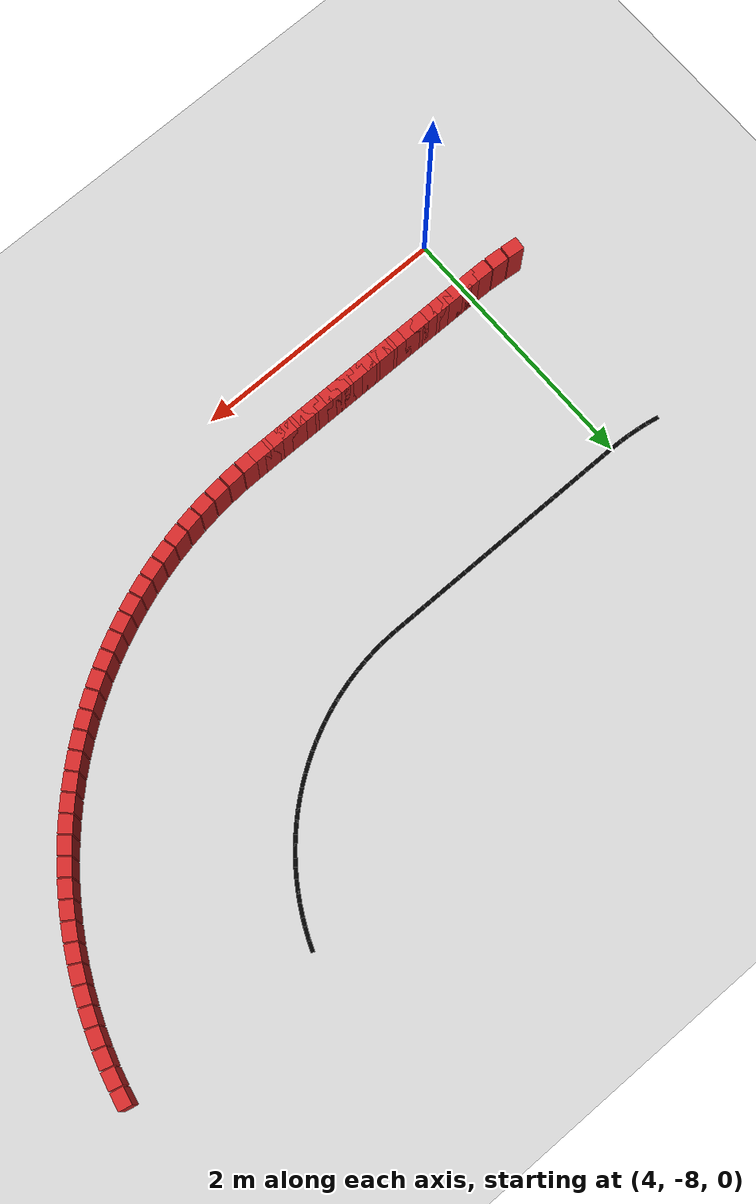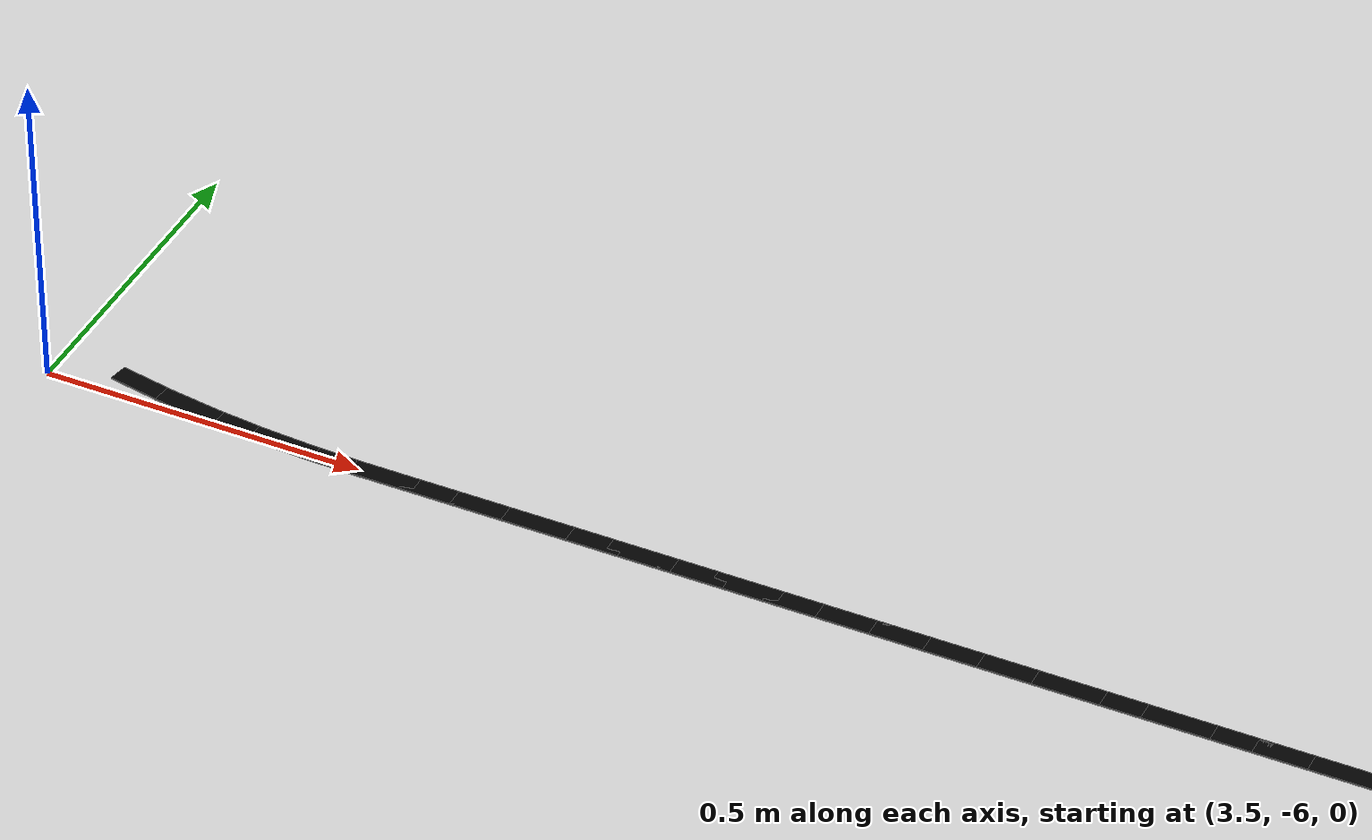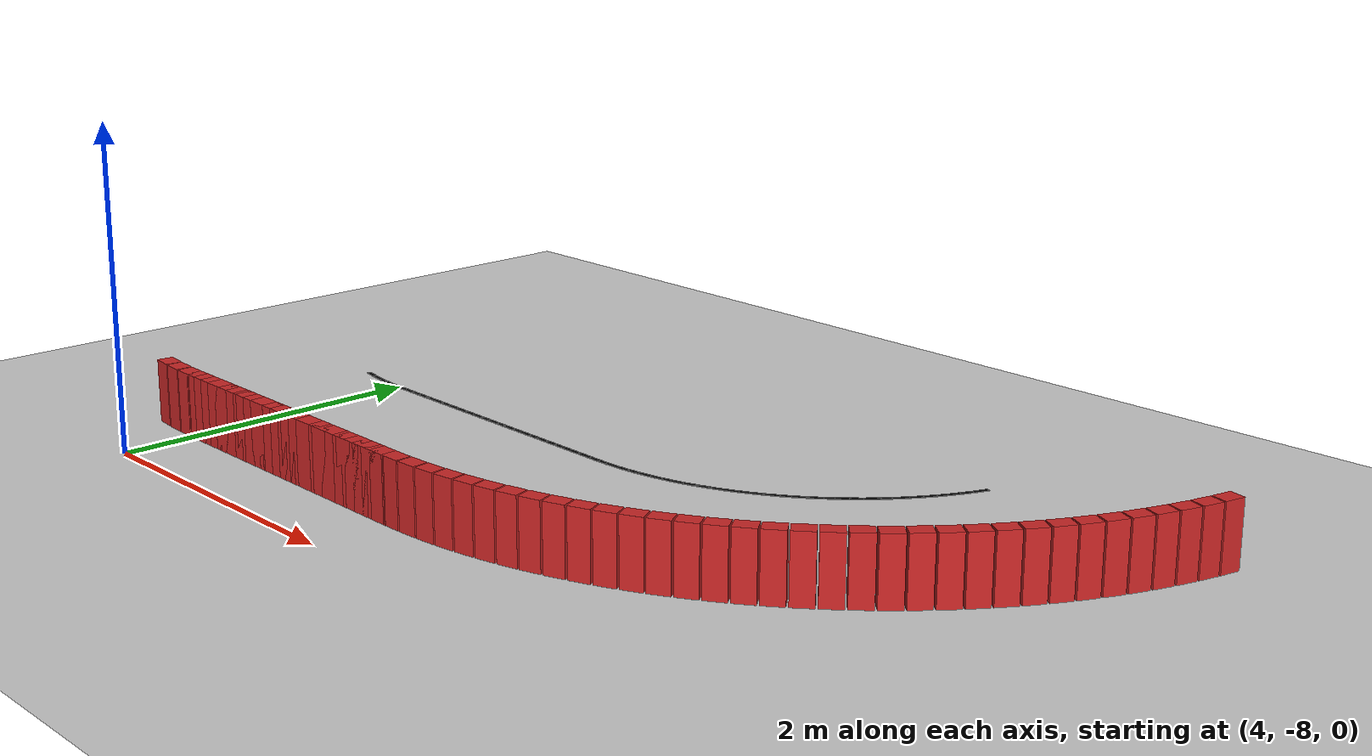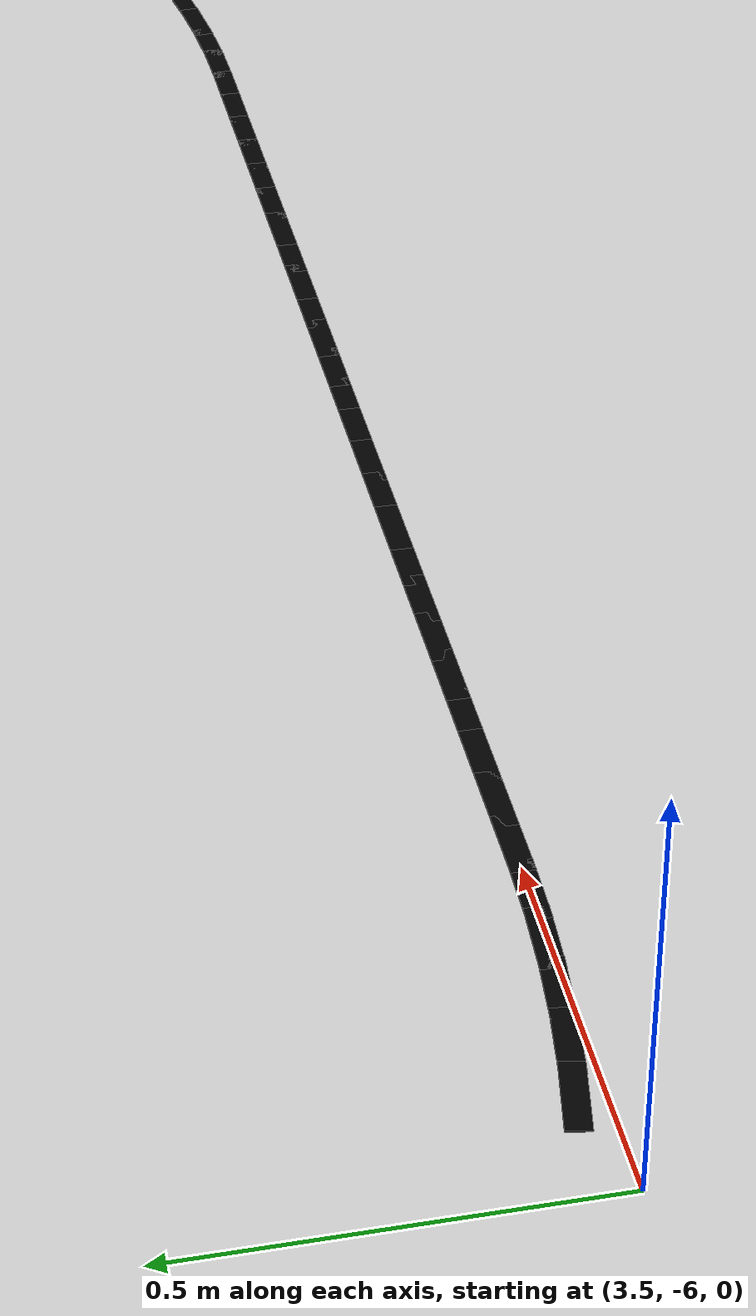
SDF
<sdf version="1.6">
 <world name="new_race_track">
  <include><uri>model://ground_plane</uri></include>
  <include><uri>model://sun</uri></include>
  <model name="ow_329">
   <static>true</static>
   <pose>3.6482 -7.4819 0.200 0 0 -0.1007</pose>
   <link name="l">
    <collision name="c"><geometry><box><size>0.1305 0.1 0.4</size></box></geometry></collision>
    <visual name="v">
     <geometry><box><size>0.1305 0.1 0.4</size></box></geometry>
     <material><ambient>0.8 0.15 0.15 1</ambient><diffuse>0.8 0.15 0.15 1</diffuse></material>
    </visual>
   </link>
  </model>
  <model name="ow_330">
   <static>true</static>
   <pose>3.7887 -7.4932 0.200 0 0 -0.0604</pose>
   <link name="l">
    <collision name="c"><geometry><box><size>0.1305 0.1 0.4</size></box></geometry></collision>
    <visual name="v">
     <geometry><box><size>0.1305 0.1 0.4</size></box></geometry>
     <material><ambient>0.8 0.15 0.15 1</ambient><diffuse>0.8 0.15 0.15 1</diffuse></material>
    </visual>
   </link>
  </model>
  <model name="ow_331">
   <static>true</static>
   <pose>3.9295 -7.4989 0.200 0 0 -0.0201</pose>
   <link name="l">
    <collision name="c"><geometry><box><size>0.1305 0.1 0.4</size></box></geometry></collision>
    <visual name="v">
     <geometry><box><size>0.1305 0.1 0.4</size></box></geometry>
     <material><ambient>0.8 0.15 0.15 1</ambient><diffuse>0.8 0.15 0.15 1</diffuse></material>
    </visual>
   </link>
  </model>
  <model name="ow_332">
   <static>true</static>
   <pose>4.0400 -7.5000 0.200 0 0 0.0000</pose>
   <link name="l">
    <collision name="c"><geometry><box><size>0.1300 0.1 0.4</size></box></geometry></collision>
    <visual name="v">
     <geometry><box><size>0.1300 0.1 0.4</size></box></geometry>
     <material><ambient>0.8 0.15 0.15 1</ambient><diffuse>0.8 0.15 0.15 1</diffuse></material>
    </visual>
   </link>
  </model>
  <model name="ow_333">
   <static>true</static>
   <pose>4.1200 -7.5000 0.200 0 0 0.0000</pose>
   <link name="l">
    <collision name="c"><geometry><box><size>0.1300 0.1 0.4</size></box></geometry></collision>
    <visual name="v">
     <geometry><box><size>0.1300 0.1 0.4</size></box></geometry>
     <material><ambient>0.8 0.15 0.15 1</ambient><diffuse>0.8 0.15 0.15 1</diffuse></material>
    </visual>
   </link>
  </model>
  <model name="ow_334">
   <static>true</static>
   <pose>4.2000 -7.5000 0.200 0 0 0.0000</pose>
   <link name="l">
    <collision name="c"><geometry><box><size>0.1300 0.1 0.4</size></box></geometry></collision>
    <visual name="v">
     <geometry><box><size>0.1300 0.1 0.4</size></box></geometry>
     <material><ambient>0.8 0.15 0.15 1</ambient><diffuse>0.8 0.15 0.15 1</diffuse></material>
    </visual>
   </link>
  </model>
  <model name="ow_335">
   <static>true</static>
   <pose>4.2800 -7.5000 0.200 0 0 0.0000</pose>
   <link name="l">
    <collision name="c"><geometry><box><size>0.1300 0.1 0.4</size></box></geometry></collision>
    <visual name="v">
     <geometry><box><size>0.1300 0.1 0.4</size></box></geometry>
     <material><ambient>0.8 0.15 0.15 1</ambient><diffuse>0.8 0.15 0.15 1</diffuse></material>
    </visual>
   </link>
  </model>
  <model name="ow_336">
   <static>true</static>
   <pose>4.3600 -7.5000 0.200 0 0 0.0000</pose>
   <link name="l">
    <collision name="c"><geometry><box><size>0.1300 0.1 0.4</size></box></geometry></collision>
    <visual name="v">
     <geometry><box><size>0.1300 0.1 0.4</size></box></geometry>
     <material><ambient>0.8 0.15 0.15 1</ambient><diffuse>0.8 0.15 0.15 1</diffuse></material>
    </visual>
   </link>
  </model>
  <model name="ow_337">
   <static>true</static>
   <pose>4.4400 -7.5000 0.200 0 0 0.0000</pose>
   <link name="l">
    <collision name="c"><geometry><box><size>0.1300 0.1 0.4</size></box></geometry></collision>
    <visual name="v">
     <geometry><box><size>0.1300 0.1 0.4</size></box></geometry>
     <material><ambient>0.8 0.15 0.15 1</ambient><diffuse>0.8 0.15 0.15 1</diffuse></material>
    </visual>
   </link>
  </model>
  <model name="ow_338">
   <static>true</static>
   <pose>4.5200 -7.5000 0.200 0 0 0.0000</pose>
   <link name="l">
    <collision name="c"><geometry><box><size>0.1300 0.1 0.4</size></box></geometry></collision>
    <visual name="v">
     <geometry><box><size>0.1300 0.1 0.4</size></box></geometry>
     <material><ambient>0.8 0.15 0.15 1</ambient><diffuse>0.8 0.15 0.15 1</diffuse></material>
    </visual>
   </link>
  </model>
  <model name="ow_339">
   <static>true</static>
   <pose>4.6000 -7.5000 0.200 0 0 0.0000</pose>
   <link name="l">
    <collision name="c"><geometry><box><size>0.1300 0.1 0.4</size></box></geometry></collision>
    <visual name="v">
     <geometry><box><size>0.1300 0.1 0.4</size></box></geometry>
     <material><ambient>0.8 0.15 0.15 1</ambient><diffuse>0.8 0.15 0.15 1</diffuse></material>
    </visual>
   </link>
  </model>
  <model name="ow_340">
   <static>true</static>
   <pose>4.6800 -7.5000 0.200 0 0 0.0000</pose>
   <link name="l">
    <collision name="c"><geometry><box><size>0.1300 0.1 0.4</size></box></geometry></collision>
    <visual name="v">
     <geometry><box><size>0.1300 0.1 0.4</size></box></geometry>
     <material><ambient>0.8 0.15 0.15 1</ambient><diffuse>0.8 0.15 0.15 1</diffuse></material>
    </visual>
   </link>
  </model>
  <model name="ow_341">
   <static>true</static>
   <pose>4.7600 -7.5000 0.200 0 0 0.0000</pose>
   <link name="l">
    <collision name="c"><geometry><box><size>0.1300 0.1 0.4</size></box></geometry></collision>
    <visual name="v">
     <geometry><box><size>0.1300 0.1 0.4</size></box></geometry>
     <material><ambient>0.8 0.15 0.15 1</ambient><diffuse>0.8 0.15 0.15 1</diffuse></material>
    </visual>
   </link>
  </model>
  <model name="ow_342">
   <static>true</static>
   <pose>4.8400 -7.5000 0.200 0 0 0.0000</pose>
   <link name="l">
    <collision name="c"><geometry><box><size>0.1300 0.1 0.4</size></box></geometry></collision>
    <visual name="v">
     <geometry><box><size>0.1300 0.1 0.4</size></box></geometry>
     <material><ambient>0.8 0.15 0.15 1</ambient><diffuse>0.8 0.15 0.15 1</diffuse></material>
    </visual>
   </link>
  </model>
  <model name="ow_343">
   <static>true</static>
   <pose>4.9200 -7.5000 0.200 0 0 0.0000</pose>
   <link name="l">
    <collision name="c"><geometry><box><size>0.1300 0.1 0.4</size></box></geometry></collision>
    <visual name="v">
     <geometry><box><size>0.1300 0.1 0.4</size></box></geometry>
     <material><ambient>0.8 0.15 0.15 1</ambient><diffuse>0.8 0.15 0.15 1</diffuse></material>
    </visual>
   </link>
  </model>
  <model name="ow_344">
   <static>true</static>
   <pose>5.0000 -7.5000 0.200 0 0 0.0000</pose>
   <link name="l">
    <collision name="c"><geometry><box><size>0.1300 0.1 0.4</size></box></geometry></collision>
    <visual name="v">
     <geometry><box><size>0.1300 0.1 0.4</size></box></geometry>
     <material><ambient>0.8 0.15 0.15 1</ambient><diffuse>0.8 0.15 0.15 1</diffuse></material>
    </visual>
   </link>
  </model>
  <model name="ow_345">
   <static>true</static>
   <pose>5.0800 -7.5000 0.200 0 0 0.0000</pose>
   <link name="l">
    <collision name="c"><geometry><box><size>0.1300 0.1 0.4</size></box></geometry></collision>
    <visual name="v">
     <geometry><box><size>0.1300 0.1 0.4</size></box></geometry>
     <material><ambient>0.8 0.15 0.15 1</ambient><diffuse>0.8 0.15 0.15 1</diffuse></material>
    </visual>
   </link>
  </model>
  <model name="ow_346">
   <static>true</static>
   <pose>5.1600 -7.5000 0.200 0 0 0.0000</pose>
   <link name="l">
    <collision name="c"><geometry><box><size>0.1300 0.1 0.4</size></box></geometry></collision>
    <visual name="v">
     <geometry><box><size>0.1300 0.1 0.4</size></box></geometry>
     <material><ambient>0.8 0.15 0.15 1</ambient><diffuse>0.8 0.15 0.15 1</diffuse></material>
    </visual>
   </link>
  </model>
  <model name="ow_347">
   <static>true</static>
   <pose>5.2400 -7.5000 0.200 0 0 0.0000</pose>
   <link name="l">
    <collision name="c"><geometry><box><size>0.1300 0.1 0.4</size></box></geometry></collision>
    <visual name="v">
     <geometry><box><size>0.1300 0.1 0.4</size></box></geometry>
     <material><ambient>0.8 0.15 0.15 1</ambient><diffuse>0.8 0.15 0.15 1</diffuse></material>
    </visual>
   </link>
  </model>
  <model name="ow_348">
   <static>true</static>
   <pose>5.3200 -7.5000 0.200 0 0 0.0000</pose>
   <link name="l">
    <collision name="c"><geometry><box><size>0.1300 0.1 0.4</size></box></geometry></collision>
    <visual name="v">
     <geometry><box><size>0.1300 0.1 0.4</size></box></geometry>
     <material><ambient>0.8 0.15 0.15 1</ambient><diffuse>0.8 0.15 0.15 1</diffuse></material>
    </visual>
   </link>
  </model>
  <model name="ow_349">
   <static>true</static>
   <pose>5.4000 -7.5000 0.200 0 0 0.0000</pose>
   <link name="l">
    <collision name="c"><geometry><box><size>0.1300 0.1 0.4</size></box></geometry></collision>
    <visual name="v">
     <geometry><box><size>0.1300 0.1 0.4</size></box></geometry>
     <material><ambient>0.8 0.15 0.15 1</ambient><diffuse>0.8 0.15 0.15 1</diffuse></material>
    </visual>
   </link>
  </model>
  <model name="ow_350">
   <static>true</static>
   <pose>5.4800 -7.5000 0.200 0 0 0.0000</pose>
   <link name="l">
    <collision name="c"><geometry><box><size>0.1300 0.1 0.4</size></box></geometry></collision>
    <visual name="v">
     <geometry><box><size>0.1300 0.1 0.4</size></box></geometry>
     <material><ambient>0.8 0.15 0.15 1</ambient><diffuse>0.8 0.15 0.15 1</diffuse></material>
    </visual>
   </link>
  </model>
  <model name="ow_351">
   <static>true</static>
   <pose>5.5600 -7.5000 0.200 0 0 0.0000</pose>
   <link name="l">
    <collision name="c"><geometry><box><size>0.1300 0.1 0.4</size></box></geometry></collision>
    <visual name="v">
     <geometry><box><size>0.1300 0.1 0.4</size></box></geometry>
     <material><ambient>0.8 0.15 0.15 1</ambient><diffuse>0.8 0.15 0.15 1</diffuse></material>
    </visual>
   </link>
  </model>
  <model name="ow_352">
   <static>true</static>
   <pose>5.6400 -7.5000 0.200 0 0 0.0000</pose>
   <link name="l">
    <collision name="c"><geometry><box><size>0.1300 0.1 0.4</size></box></geometry></collision>
    <visual name="v">
     <geometry><box><size>0.1300 0.1 0.4</size></box></geometry>
     <material><ambient>0.8 0.15 0.15 1</ambient><diffuse>0.8 0.15 0.15 1</diffuse></material>
    </visual>
   </link>
  </model>
  <model name="ow_353">
   <static>true</static>
   <pose>5.7200 -7.5000 0.200 0 0 0.0000</pose>
   <link name="l">
    <collision name="c"><geometry><box><size>0.1300 0.1 0.4</size></box></geometry></collision>
    <visual name="v">
     <geometry><box><size>0.1300 0.1 0.4</size></box></geometry>
     <material><ambient>0.8 0.15 0.15 1</ambient><diffuse>0.8 0.15 0.15 1</diffuse></material>
    </visual>
   </link>
  </model>
  <model name="ow_354">
   <static>true</static>
   <pose>5.8000 -7.5000 0.200 0 0 0.0000</pose>
   <link name="l">
    <collision name="c"><geometry><box><size>0.1300 0.1 0.4</size></box></geometry></collision>
    <visual name="v">
     <geometry><box><size>0.1300 0.1 0.4</size></box></geometry>
     <material><ambient>0.8 0.15 0.15 1</ambient><diffuse>0.8 0.15 0.15 1</diffuse></material>
    </visual>
   </link>
  </model>
  <model name="ow_355">
   <static>true</static>
   <pose>5.8800 -7.5000 0.200 0 0 0.0000</pose>
   <link name="l">
    <collision name="c"><geometry><box><size>0.1300 0.1 0.4</size></box></geometry></collision>
    <visual name="v">
     <geometry><box><size>0.1300 0.1 0.4</size></box></geometry>
     <material><ambient>0.8 0.15 0.15 1</ambient><diffuse>0.8 0.15 0.15 1</diffuse></material>
    </visual>
   </link>
  </model>
  <model name="ow_356">
   <static>true</static>
   <pose>5.9600 -7.5000 0.200 0 0 0.0000</pose>
   <link name="l">
    <collision name="c"><geometry><box><size>0.1300 0.1 0.4</size></box></geometry></collision>
    <visual name="v">
     <geometry><box><size>0.1300 0.1 0.4</size></box></geometry>
     <material><ambient>0.8 0.15 0.15 1</ambient><diffuse>0.8 0.15 0.15 1</diffuse></material>
    </visual>
   </link>
  </model>
  <model name="ow_357">
   <static>true</static>
   <pose>6.0705 -7.4989 0.200 0 0 0.0201</pose>
   <link name="l">
    <collision name="c"><geometry><box><size>0.1305 0.1 0.4</size></box></geometry></collision>
    <visual name="v">
     <geometry><box><size>0.1305 0.1 0.4</size></box></geometry>
     <material><ambient>0.8 0.15 0.15 1</ambient><diffuse>0.8 0.15 0.15 1</diffuse></material>
    </visual>
   </link>
  </model>
  <model name="ow_358">
   <static>true</static>
   <pose>6.2113 -7.4932 0.200 0 0 0.0604</pose>
   <link name="l">
    <collision name="c"><geometry><box><size>0.1305 0.1 0.4</size></box></geometry></collision>
    <visual name="v">
     <geometry><box><size>0.1305 0.1 0.4</size></box></geometry>
     <material><ambient>0.8 0.15 0.15 1</ambient><diffuse>0.8 0.15 0.15 1</diffuse></material>
    </visual>
   </link>
  </model>
  <model name="ow_359">
   <static>true</static>
   <pose>6.3518 -7.4819 0.200 0 0 0.1007</pose>
   <link name="l">
    <collision name="c"><geometry><box><size>0.1305 0.1 0.4</size></box></geometry></collision>
    <visual name="v">
     <geometry><box><size>0.1305 0.1 0.4</size></box></geometry>
     <material><ambient>0.8 0.15 0.15 1</ambient><diffuse>0.8 0.15 0.15 1</diffuse></material>
    </visual>
   </link>
  </model>
  <model name="ow_360">
   <static>true</static>
   <pose>6.4917 -7.4649 0.200 0 0 0.1410</pose>
   <link name="l">
    <collision name="c"><geometry><box><size>0.1305 0.1 0.4</size></box></geometry></collision>
    <visual name="v">
     <geometry><box><size>0.1305 0.1 0.4</size></box></geometry>
     <material><ambient>0.8 0.15 0.15 1</ambient><diffuse>0.8 0.15 0.15 1</diffuse></material>
    </visual>
   </link>
  </model>
  <model name="ow_361">
   <static>true</static>
   <pose>6.6308 -7.4423 0.200 0 0 0.1812</pose>
   <link name="l">
    <collision name="c"><geometry><box><size>0.1305 0.1 0.4</size></box></geometry></collision>
    <visual name="v">
     <geometry><box><size>0.1305 0.1 0.4</size></box></geometry>
     <material><ambient>0.8 0.15 0.15 1</ambient><diffuse>0.8 0.15 0.15 1</diffuse></material>
    </visual>
   </link>
  </model>
  <model name="ow_362">
   <static>true</static>
   <pose>6.7689 -7.4141 0.200 0 0 0.2215</pose>
   <link name="l">
    <collision name="c"><geometry><box><size>0.1305 0.1 0.4</size></box></geometry></collision>
    <visual name="v">
     <geometry><box><size>0.1305 0.1 0.4</size></box></geometry>
     <material><ambient>0.8 0.15 0.15 1</ambient><diffuse>0.8 0.15 0.15 1</diffuse></material>
    </visual>
   </link>
  </model>
  <model name="ow_363">
   <static>true</static>
   <pose>6.9058 -7.3803 0.200 0 0 0.2618</pose>
   <link name="l">
    <collision name="c"><geometry><box><size>0.1305 0.1 0.4</size></box></geometry></collision>
    <visual name="v">
     <geometry><box><size>0.1305 0.1 0.4</size></box></geometry>
     <material><ambient>0.8 0.15 0.15 1</ambient><diffuse>0.8 0.15 0.15 1</diffuse></material>
    </visual>
   </link>
  </model>
  <model name="ow_364">
   <static>true</static>
   <pose>7.0411 -7.3411 0.200 0 0 0.3021</pose>
   <link name="l">
    <collision name="c"><geometry><box><size>0.1305 0.1 0.4</size></box></geometry></collision>
    <visual name="v">
     <geometry><box><size>0.1305 0.1 0.4</size></box></geometry>
     <material><ambient>0.8 0.15 0.15 1</ambient><diffuse>0.8 0.15 0.15 1</diffuse></material>
    </visual>
   </link>
  </model>
  <model name="ow_365">
   <static>true</static>
   <pose>7.1748 -7.2965 0.200 0 0 0.3424</pose>
   <link name="l">
    <collision name="c"><geometry><box><size>0.1305 0.1 0.4</size></box></geometry></collision>
    <visual name="v">
     <geometry><box><size>0.1305 0.1 0.4</size></box></geometry>
     <material><ambient>0.8 0.15 0.15 1</ambient><diffuse>0.8 0.15 0.15 1</diffuse></material>
    </visual>
   </link>
  </model>
  <model name="ow_366">
   <static>true</static>
   <pose>7.3066 -7.2465 0.200 0 0 0.3826</pose>
   <link name="l">
    <collision name="c"><geometry><box><size>0.1305 0.1 0.4</size></box></geometry></collision>
    <visual name="v">
     <geometry><box><size>0.1305 0.1 0.4</size></box></geometry>
     <material><ambient>0.8 0.15 0.15 1</ambient><diffuse>0.8 0.15 0.15 1</diffuse></material>
    </visual>
   </link>
  </model>
  <model name="ow_367">
   <static>true</static>
   <pose>7.4363 -7.1913 0.200 0 0 0.4229</pose>
   <link name="l">
    <collision name="c"><geometry><box><size>0.1305 0.1 0.4</size></box></geometry></collision>
    <visual name="v">
     <geometry><box><size>0.1305 0.1 0.4</size></box></geometry>
     <material><ambient>0.8 0.15 0.15 1</ambient><diffuse>0.8 0.15 0.15 1</diffuse></material>
    </visual>
   </link>
  </model>
  <model name="ow_368">
   <static>true</static>
   <pose>7.5636 -7.1309 0.200 0 0 0.4632</pose>
   <link name="l">
    <collision name="c"><geometry><box><size>0.1305 0.1 0.4</size></box></geometry></collision>
    <visual name="v">
     <geometry><box><size>0.1305 0.1 0.4</size></box></geometry>
     <material><ambient>0.8 0.15 0.15 1</ambient><diffuse>0.8 0.15 0.15 1</diffuse></material>
    </visual>
   </link>
  </model>
  <model name="ow_369">
   <static>true</static>
   <pose>7.6884 -7.0654 0.200 0 0 0.5035</pose>
   <link name="l">
    <collision name="c"><geometry><box><size>0.1305 0.1 0.4</size></box></geometry></collision>
    <visual name="v">
     <geometry><box><size>0.1305 0.1 0.4</size></box></geometry>
     <material><ambient>0.8 0.15 0.15 1</ambient><diffuse>0.8 0.15 0.15 1</diffuse></material>
    </visual>
   </link>
  </model>
  <model name="ow_370">
   <static>true</static>
   <pose>7.8105 -6.9949 0.200 0 0 0.5437</pose>
   <link name="l">
    <collision name="c"><geometry><box><size>0.1305 0.1 0.4</size></box></geometry></collision>
    <visual name="v">
     <geometry><box><size>0.1305 0.1 0.4</size></box></geometry>
     <material><ambient>0.8 0.15 0.15 1</ambient><diffuse>0.8 0.15 0.15 1</diffuse></material>
    </visual>
   </link>
  </model>
  <model name="ow_371">
   <static>true</static>
   <pose>7.9296 -6.9196 0.200 0 0 0.5840</pose>
   <link name="l">
    <collision name="c"><geometry><box><size>0.1305 0.1 0.4</size></box></geometry></collision>
    <visual name="v">
     <geometry><box><size>0.1305 0.1 0.4</size></box></geometry>
     <material><ambient>0.8 0.15 0.15 1</ambient><diffuse>0.8 0.15 0.15 1</diffuse></material>
    </visual>
   </link>
  </model>
  <model name="ow_372">
   <static>true</static>
   <pose>8.0456 -6.8395 0.200 0 0 0.6243</pose>
   <link name="l">
    <collision name="c"><geometry><box><size>0.1305 0.1 0.4</size></box></geometry></collision>
    <visual name="v">
     <geometry><box><size>0.1305 0.1 0.4</size></box></geometry>
     <material><ambient>0.8 0.15 0.15 1</ambient><diffuse>0.8 0.15 0.15 1</diffuse></material>
    </visual>
   </link>
  </model>
  <model name="ow_373">
   <static>true</static>
   <pose>8.1583 -6.7548 0.200 0 0 0.6646</pose>
   <link name="l">
    <collision name="c"><geometry><box><size>0.1305 0.1 0.4</size></box></geometry></collision>
    <visual name="v">
     <geometry><box><size>0.1305 0.1 0.4</size></box></geometry>
     <material><ambient>0.8 0.15 0.15 1</ambient><diffuse>0.8 0.15 0.15 1</diffuse></material>
    </visual>
   </link>
  </model>
  <model name="ow_374">
   <static>true</static>
   <pose>8.2674 -6.6657 0.200 0 0 0.7048</pose>
   <link name="l">
    <collision name="c"><geometry><box><size>0.1305 0.1 0.4</size></box></geometry></collision>
    <visual name="v">
     <geometry><box><size>0.1305 0.1 0.4</size></box></geometry>
     <material><ambient>0.8 0.15 0.15 1</ambient><diffuse>0.8 0.15 0.15 1</diffuse></material>
    </visual>
   </link>
  </model>
  <model name="ow_375">
   <static>true</static>
   <pose>8.3729 -6.5722 0.200 0 0 0.7451</pose>
   <link name="l">
    <collision name="c"><geometry><box><size>0.1305 0.1 0.4</size></box></geometry></collision>
    <visual name="v">
     <geometry><box><size>0.1305 0.1 0.4</size></box></geometry>
     <material><ambient>0.8 0.15 0.15 1</ambient><diffuse>0.8 0.15 0.15 1</diffuse></material>
    </visual>
   </link>
  </model>
  <model name="ow_376">
   <static>true</static>
   <pose>8.4746 -6.4746 0.200 0 0 0.7854</pose>
   <link name="l">
    <collision name="c"><geometry><box><size>0.1305 0.1 0.4</size></box></geometry></collision>
    <visual name="v">
     <geometry><box><size>0.1305 0.1 0.4</size></box></geometry>
     <material><ambient>0.8 0.15 0.15 1</ambient><diffuse>0.8 0.15 0.15 1</diffuse></material>
    </visual>
   </link>
  </model>
  <model name="ow_377">
   <static>true</static>
   <pose>8.5722 -6.3729 0.200 0 0 0.8257</pose>
   <link name="l">
    <collision name="c"><geometry><box><size>0.1305 0.1 0.4</size></box></geometry></collision>
    <visual name="v">
     <geometry><box><size>0.1305 0.1 0.4</size></box></geometry>
     <material><ambient>0.8 0.15 0.15 1</ambient><diffuse>0.8 0.15 0.15 1</diffuse></material>
    </visual>
   </link>
  </model>
  <model name="ow_378">
   <static>true</static>
   <pose>8.6657 -6.2674 0.200 0 0 0.8660</pose>
   <link name="l">
    <collision name="c"><geometry><box><size>0.1305 0.1 0.4</size></box></geometry></collision>
    <visual name="v">
     <geometry><box><size>0.1305 0.1 0.4</size></box></geometry>
     <material><ambient>0.8 0.15 0.15 1</ambient><diffuse>0.8 0.15 0.15 1</diffuse></material>
    </visual>
   </link>
  </model>
  <model name="ow_379">
   <static>true</static>
   <pose>8.7548 -6.1583 0.200 0 0 0.9062</pose>
   <link name="l">
    <collision name="c"><geometry><box><size>0.1305 0.1 0.4</size></box></geometry></collision>
    <visual name="v">
     <geometry><box><size>0.1305 0.1 0.4</size></box></geometry>
     <material><ambient>0.8 0.15 0.15 1</ambient><diffuse>0.8 0.15 0.15 1</diffuse></material>
    </visual>
   </link>
  </model>
  <model name="ow_380">
   <static>true</static>
   <pose>8.8395 -6.0456 0.200 0 0 0.9465</pose>
   <link name="l">
    <collision name="c"><geometry><box><size>0.1305 0.1 0.4</size></box></geometry></collision>
    <visual name="v">
     <geometry><box><size>0.1305 0.1 0.4</size></box></geometry>
     <material><ambient>0.8 0.15 0.15 1</ambient><diffuse>0.8 0.15 0.15 1</diffuse></material>
    </visual>
   </link>
  </model>
  <model name="ow_381">
   <static>true</static>
   <pose>8.9196 -5.9296 0.200 0 0 0.9868</pose>
   <link name="l">
    <collision name="c"><geometry><box><size>0.1305 0.1 0.4</size></box></geometry></collision>
    <visual name="v">
     <geometry><box><size>0.1305 0.1 0.4</size></box></geometry>
     <material><ambient>0.8 0.15 0.15 1</ambient><diffuse>0.8 0.15 0.15 1</diffuse></material>
    </visual>
   </link>
  </model>
  <model name="ow_382">
   <static>true</static>
   <pose>8.9949 -5.8105 0.200 0 0 1.0271</pose>
   <link name="l">
    <collision name="c"><geometry><box><size>0.1305 0.1 0.4</size></box></geometry></collision>
    <visual name="v">
     <geometry><box><size>0.1305 0.1 0.4</size></box></geometry>
     <material><ambient>0.8 0.15 0.15 1</ambient><diffuse>0.8 0.15 0.15 1</diffuse></material>
    </visual>
   </link>
  </model>
  <model name="ow_383">
   <static>true</static>
   <pose>9.0654 -5.6884 0.200 0 0 1.0673</pose>
   <link name="l">
    <collision name="c"><geometry><box><size>0.1305 0.1 0.4</size></box></geometry></collision>
    <visual name="v">
     <geometry><box><size>0.1305 0.1 0.4</size></box></geometry>
     <material><ambient>0.8 0.15 0.15 1</ambient><diffuse>0.8 0.15 0.15 1</diffuse></material>
    </visual>
   </link>
  </model>
  <model name="ow_384">
   <static>true</static>
   <pose>9.1309 -5.5636 0.200 0 0 1.1076</pose>
   <link name="l">
    <collision name="c"><geometry><box><size>0.1305 0.1 0.4</size></box></geometry></collision>
    <visual name="v">
     <geometry><box><size>0.1305 0.1 0.4</size></box></geometry>
     <material><ambient>0.8 0.15 0.15 1</ambient><diffuse>0.8 0.15 0.15 1</diffuse></material>
    </visual>
   </link>
  </model>
  <model name="ow_385">
   <static>true</static>
   <pose>9.1913 -5.4363 0.200 0 0 1.1479</pose>
   <link name="l">
    <collision name="c"><geometry><box><size>0.1305 0.1 0.4</size></box></geometry></collision>
    <visual name="v">
     <geometry><box><size>0.1305 0.1 0.4</size></box></geometry>
     <material><ambient>0.8 0.15 0.15 1</ambient><diffuse>0.8 0.15 0.15 1</diffuse></material>
    </visual>
   </link>
  </model>
  <model name="ow_386">
   <static>true</static>
   <pose>9.2465 -5.3066 0.200 0 0 1.1882</pose>
   <link name="l">
    <collision name="c"><geometry><box><size>0.1305 0.1 0.4</size></box></geometry></collision>
    <visual name="v">
     <geometry><box><size>0.1305 0.1 0.4</size></box></geometry>
     <material><ambient>0.8 0.15 0.15 1</ambient><diffuse>0.8 0.15 0.15 1</diffuse></material>
    </visual>
   </link>
  </model>
  <model name="ow_387">
   <static>true</static>
   <pose>9.2965 -5.1748 0.200 0 0 1.2284</pose>
   <link name="l">
    <collision name="c"><geometry><box><size>0.1305 0.1 0.4</size></box></geometry></collision>
    <visual name="v">
     <geometry><box><size>0.1305 0.1 0.4</size></box></geometry>
     <material><ambient>0.8 0.15 0.15 1</ambient><diffuse>0.8 0.15 0.15 1</diffuse></material>
    </visual>
   </link>
  </model>
  <model name="ow_388">
   <static>true</static>
   <pose>9.3411 -5.0411 0.200 0 0 1.2687</pose>
   <link name="l">
    <collision name="c"><geometry><box><size>0.1305 0.1 0.4</size></box></geometry></collision>
    <visual name="v">
     <geometry><box><size>0.1305 0.1 0.4</size></box></geometry>
     <material><ambient>0.8 0.15 0.15 1</ambient><diffuse>0.8 0.15 0.15 1</diffuse></material>
    </visual>
   </link>
  </model>
  <model name="ow_389">
   <static>true</static>
   <pose>9.3803 -4.9058 0.200 0 0 1.3090</pose>
   <link name="l">
    <collision name="c"><geometry><box><size>0.1305 0.1 0.4</size></box></geometry></collision>
    <visual name="v">
     <geometry><box><size>0.1305 0.1 0.4</size></box></geometry>
     <material><ambient>0.8 0.15 0.15 1</ambient><diffuse>0.8 0.15 0.15 1</diffuse></material>
    </visual>
   </link>
  </model>
  <model name="ow_390">
   <static>true</static>
   <pose>9.4141 -4.7689 0.200 0 0 1.3493</pose>
   <link name="l">
    <collision name="c"><geometry><box><size>0.1305 0.1 0.4</size></box></geometry></collision>
    <visual name="v">
     <geometry><box><size>0.1305 0.1 0.4</size></box></geometry>
     <material><ambient>0.8 0.15 0.15 1</ambient><diffuse>0.8 0.15 0.15 1</diffuse></material>
    </visual>
   </link>
  </model>
  <model name="line_327">
   <static>true</static>
   <pose>3.6396 -5.9668 0.002 0 0 -0.1812</pose>
   <link name="l">
    <visual name="v">
     <geometry><box><size>0.1005 0.03 0.002</size></box></geometry>
     <material><ambient>0 0 0 1</ambient><diffuse>0 0 0 1</diffuse></material>
    </visual>
   </link>
  </model>
  <model name="line_328">
   <static>true</static>
   <pose>3.7191 -5.9798 0.002 0 0 -0.1410</pose>
   <link name="l">
    <visual name="v">
     <geometry><box><size>0.1005 0.03 0.002</size></box></geometry>
     <material><ambient>0 0 0 1</ambient><diffuse>0 0 0 1</diffuse></material>
    </visual>
   </link>
  </model>
  <model name="line_329">
   <static>true</static>
   <pose>3.7990 -5.9895 0.002 0 0 -0.1007</pose>
   <link name="l">
    <visual name="v">
     <geometry><box><size>0.1005 0.03 0.002</size></box></geometry>
     <material><ambient>0 0 0 1</ambient><diffuse>0 0 0 1</diffuse></material>
    </visual>
   </link>
  </model>
  <model name="line_330">
   <static>true</static>
   <pose>3.8793 -5.9959 0.002 0 0 -0.0604</pose>
   <link name="l">
    <visual name="v">
     <geometry><box><size>0.1005 0.03 0.002</size></box></geometry>
     <material><ambient>0 0 0 1</ambient><diffuse>0 0 0 1</diffuse></material>
    </visual>
   </link>
  </model>
  <model name="line_331">
   <static>true</static>
   <pose>3.9597 -5.9992 0.002 0 0 -0.0201</pose>
   <link name="l">
    <visual name="v">
     <geometry><box><size>0.1005 0.03 0.002</size></box></geometry>
     <material><ambient>0 0 0 1</ambient><diffuse>0 0 0 1</diffuse></material>
    </visual>
   </link>
  </model>
  <model name="line_332">
   <static>true</static>
   <pose>4.0400 -6.0000 0.002 0 0 0.0000</pose>
   <link name="l">
    <visual name="v">
     <geometry><box><size>0.1000 0.03 0.002</size></box></geometry>
     <material><ambient>0 0 0 1</ambient><diffuse>0 0 0 1</diffuse></material>
    </visual>
   </link>
  </model>
  <model name="line_333">
   <static>true</static>
   <pose>4.1200 -6.0000 0.002 0 0 0.0000</pose>
   <link name="l">
    <visual name="v">
     <geometry><box><size>0.1000 0.03 0.002</size></box></geometry>
     <material><ambient>0 0 0 1</ambient><diffuse>0 0 0 1</diffuse></material>
    </visual>
   </link>
  </model>
  <model name="line_334">
   <static>true</static>
   <pose>4.2000 -6.0000 0.002 0 0 0.0000</pose>
   <link name="l">
    <visual name="v">
     <geometry><box><size>0.1000 0.03 0.002</size></box></geometry>
     <material><ambient>0 0 0 1</ambient><diffuse>0 0 0 1</diffuse></material>
    </visual>
   </link>
  </model>
  <model name="line_335">
   <static>true</static>
   <pose>4.2800 -6.0000 0.002 0 0 0.0000</pose>
   <link name="l">
    <visual name="v">
     <geometry><box><size>0.1000 0.03 0.002</size></box></geometry>
     <material><ambient>0 0 0 1</ambient><diffuse>0 0 0 1</diffuse></material>
    </visual>
   </link>
  </model>
  <model name="line_336">
   <static>true</static>
   <pose>4.3600 -6.0000 0.002 0 0 0.0000</pose>
   <link name="l">
    <visual name="v">
     <geometry><box><size>0.1000 0.03 0.002</size></box></geometry>
     <material><ambient>0 0 0 1</ambient><diffuse>0 0 0 1</diffuse></material>
    </visual>
   </link>
  </model>
  <model name="line_337">
   <static>true</static>
   <pose>4.4400 -6.0000 0.002 0 0 0.0000</pose>
   <link name="l">
    <visual name="v">
     <geometry><box><size>0.1000 0.03 0.002</size></box></geometry>
     <material><ambient>0 0 0 1</ambient><diffuse>0 0 0 1</diffuse></material>
    </visual>
   </link>
  </model>
  <model name="line_338">
   <static>true</static>
   <pose>4.5200 -6.0000 0.002 0 0 0.0000</pose>
   <link name="l">
    <visual name="v">
     <geometry><box><size>0.1000 0.03 0.002</size></box></geometry>
     <material><ambient>0 0 0 1</ambient><diffuse>0 0 0 1</diffuse></material>
    </visual>
   </link>
  </model>
  <model name="line_339">
   <static>true</static>
   <pose>4.6000 -6.0000 0.002 0 0 0.0000</pose>
   <link name="l">
    <visual name="v">
     <geometry><box><size>0.1000 0.03 0.002</size></box></geometry>
     <material><ambient>0 0 0 1</ambient><diffuse>0 0 0 1</diffuse></material>
    </visual>
   </link>
  </model>
  <model name="line_340">
   <static>true</static>
   <pose>4.6800 -6.0000 0.002 0 0 0.0000</pose>
   <link name="l">
    <visual name="v">
     <geometry><box><size>0.1000 0.03 0.002</size></box></geometry>
     <material><ambient>0 0 0 1</ambient><diffuse>0 0 0 1</diffuse></material>
    </visual>
   </link>
  </model>
  <model name="line_341">
   <static>true</static>
   <pose>4.7600 -6.0000 0.002 0 0 0.0000</pose>
   <link name="l">
    <visual name="v">
     <geometry><box><size>0.1000 0.03 0.002</size></box></geometry>
     <material><ambient>0 0 0 1</ambient><diffuse>0 0 0 1</diffuse></material>
    </visual>
   </link>
  </model>
  <model name="line_342">
   <static>true</static>
   <pose>4.8400 -6.0000 0.002 0 0 0.0000</pose>
   <link name="l">
    <visual name="v">
     <geometry><box><size>0.1000 0.03 0.002</size></box></geometry>
     <material><ambient>0 0 0 1</ambient><diffuse>0 0 0 1</diffuse></material>
    </visual>
   </link>
  </model>
  <model name="line_343">
   <static>true</static>
   <pose>4.9200 -6.0000 0.002 0 0 0.0000</pose>
   <link name="l">
    <visual name="v">
     <geometry><box><size>0.1000 0.03 0.002</size></box></geometry>
     <material><ambient>0 0 0 1</ambient><diffuse>0 0 0 1</diffuse></material>
    </visual>
   </link>
  </model>
  <model name="line_344">
   <static>true</static>
   <pose>5.0000 -6.0000 0.002 0 0 0.0000</pose>
   <link name="l">
    <visual name="v">
     <geometry><box><size>0.1000 0.03 0.002</size></box></geometry>
     <material><ambient>0 0 0 1</ambient><diffuse>0 0 0 1</diffuse></material>
    </visual>
   </link>
  </model>
  <model name="line_345">
   <static>true</static>
   <pose>5.0800 -6.0000 0.002 0 0 0.0000</pose>
   <link name="l">
    <visual name="v">
     <geometry><box><size>0.1000 0.03 0.002</size></box></geometry>
     <material><ambient>0 0 0 1</ambient><diffuse>0 0 0 1</diffuse></material>
    </visual>
   </link>
  </model>
  <model name="line_346">
   <static>true</static>
   <pose>5.1600 -6.0000 0.002 0 0 0.0000</pose>
   <link name="l">
    <visual name="v">
     <geometry><box><size>0.1000 0.03 0.002</size></box></geometry>
     <material><ambient>0 0 0 1</ambient><diffuse>0 0 0 1</diffuse></material>
    </visual>
   </link>
  </model>
  <model name="line_347">
   <static>true</static>
   <pose>5.2400 -6.0000 0.002 0 0 0.0000</pose>
   <link name="l">
    <visual name="v">
     <geometry><box><size>0.1000 0.03 0.002</size></box></geometry>
     <material><ambient>0 0 0 1</ambient><diffuse>0 0 0 1</diffuse></material>
    </visual>
   </link>
  </model>
  <model name="line_348">
   <static>true</static>
   <pose>5.3200 -6.0000 0.002 0 0 0.0000</pose>
   <link name="l">
    <visual name="v">
     <geometry><box><size>0.1000 0.03 0.002</size></box></geometry>
     <material><ambient>0 0 0 1</ambient><diffuse>0 0 0 1</diffuse></material>
    </visual>
   </link>
  </model>
  <model name="line_349">
   <static>true</static>
   <pose>5.4000 -6.0000 0.002 0 0 0.0000</pose>
   <link name="l">
    <visual name="v">
     <geometry><box><size>0.1000 0.03 0.002</size></box></geometry>
     <material><ambient>0 0 0 1</ambient><diffuse>0 0 0 1</diffuse></material>
    </visual>
   </link>
  </model>
  <model name="line_350">
   <static>true</static>
   <pose>5.4800 -6.0000 0.002 0 0 0.0000</pose>
   <link name="l">
    <visual name="v">
     <geometry><box><size>0.1000 0.03 0.002</size></box></geometry>
     <material><ambient>0 0 0 1</ambient><diffuse>0 0 0 1</diffuse></material>
    </visual>
   </link>
  </model>
  <model name="line_351">
   <static>true</static>
   <pose>5.5600 -6.0000 0.002 0 0 0.0000</pose>
   <link name="l">
    <visual name="v">
     <geometry><box><size>0.1000 0.03 0.002</size></box></geometry>
     <material><ambient>0 0 0 1</ambient><diffuse>0 0 0 1</diffuse></material>
    </visual>
   </link>
  </model>
  <model name="line_352">
   <static>true</static>
   <pose>5.6400 -6.0000 0.002 0 0 0.0000</pose>
   <link name="l">
    <visual name="v">
     <geometry><box><size>0.1000 0.03 0.002</size></box></geometry>
     <material><ambient>0 0 0 1</ambient><diffuse>0 0 0 1</diffuse></material>
    </visual>
   </link>
  </model>
  <model name="line_353">
   <static>true</static>
   <pose>5.7200 -6.0000 0.002 0 0 0.0000</pose>
   <link name="l">
    <visual name="v">
     <geometry><box><size>0.1000 0.03 0.002</size></box></geometry>
     <material><ambient>0 0 0 1</ambient><diffuse>0 0 0 1</diffuse></material>
    </visual>
   </link>
  </model>
  <model name="line_354">
   <static>true</static>
   <pose>5.8000 -6.0000 0.002 0 0 0.0000</pose>
   <link name="l">
    <visual name="v">
     <geometry><box><size>0.1000 0.03 0.002</size></box></geometry>
     <material><ambient>0 0 0 1</ambient><diffuse>0 0 0 1</diffuse></material>
    </visual>
   </link>
  </model>
  <model name="line_355">
   <static>true</static>
   <pose>5.8800 -6.0000 0.002 0 0 0.0000</pose>
   <link name="l">
    <visual name="v">
     <geometry><box><size>0.1000 0.03 0.002</size></box></geometry>
     <material><ambient>0 0 0 1</ambient><diffuse>0 0 0 1</diffuse></material>
    </visual>
   </link>
  </model>
  <model name="line_356">
   <static>true</static>
   <pose>5.9600 -6.0000 0.002 0 0 0.0000</pose>
   <link name="l">
    <visual name="v">
     <geometry><box><size>0.1000 0.03 0.002</size></box></geometry>
     <material><ambient>0 0 0 1</ambient><diffuse>0 0 0 1</diffuse></material>
    </visual>
   </link>
  </model>
  <model name="line_357">
   <static>true</static>
   <pose>6.0403 -5.9992 0.002 0 0 0.0201</pose>
   <link name="l">
    <visual name="v">
     <geometry><box><size>0.1005 0.03 0.002</size></box></geometry>
     <material><ambient>0 0 0 1</ambient><diffuse>0 0 0 1</diffuse></material>
    </visual>
   </link>
  </model>
  <model name="line_358">
   <static>true</static>
   <pose>6.1207 -5.9959 0.002 0 0 0.0604</pose>
   <link name="l">
    <visual name="v">
     <geometry><box><size>0.1005 0.03 0.002</size></box></geometry>
     <material><ambient>0 0 0 1</ambient><diffuse>0 0 0 1</diffuse></material>
    </visual>
   </link>
  </model>
  <model name="line_359">
   <static>true</static>
   <pose>6.2010 -5.9895 0.002 0 0 0.1007</pose>
   <link name="l">
    <visual name="v">
     <geometry><box><size>0.1005 0.03 0.002</size></box></geometry>
     <material><ambient>0 0 0 1</ambient><diffuse>0 0 0 1</diffuse></material>
    </visual>
   </link>
  </model>
  <model name="line_360">
   <static>true</static>
   <pose>6.2809 -5.9798 0.002 0 0 0.1410</pose>
   <link name="l">
    <visual name="v">
     <geometry><box><size>0.1005 0.03 0.002</size></box></geometry>
     <material><ambient>0 0 0 1</ambient><diffuse>0 0 0 1</diffuse></material>
    </visual>
   </link>
  </model>
  <model name="line_361">
   <static>true</static>
   <pose>6.3604 -5.9668 0.002 0 0 0.1812</pose>
   <link name="l">
    <visual name="v">
     <geometry><box><size>0.1005 0.03 0.002</size></box></geometry>
     <material><ambient>0 0 0 1</ambient><diffuse>0 0 0 1</diffuse></material>
    </visual>
   </link>
  </model>
  <model name="line_362">
   <static>true</static>
   <pose>6.4393 -5.9507 0.002 0 0 0.2215</pose>
   <link name="l">
    <visual name="v">
     <geometry><box><size>0.1005 0.03 0.002</size></box></geometry>
     <material><ambient>0 0 0 1</ambient><diffuse>0 0 0 1</diffuse></material>
    </visual>
   </link>
  </model>
  <model name="line_363">
   <static>true</static>
   <pose>6.5175 -5.9315 0.002 0 0 0.2618</pose>
   <link name="l">
    <visual name="v">
     <geometry><box><size>0.1005 0.03 0.002</size></box></geometry>
     <material><ambient>0 0 0 1</ambient><diffuse>0 0 0 1</diffuse></material>
    </visual>
   </link>
  </model>
  <model name="line_364">
   <static>true</static>
   <pose>6.5949 -5.9091 0.002 0 0 0.3021</pose>
   <link name="l">
    <visual name="v">
     <geometry><box><size>0.1005 0.03 0.002</size></box></geometry>
     <material><ambient>0 0 0 1</ambient><diffuse>0 0 0 1</diffuse></material>
    </visual>
   </link>
  </model>
  <model name="line_365">
   <static>true</static>
   <pose>6.6713 -5.8836 0.002 0 0 0.3424</pose>
   <link name="l">
    <visual name="v">
     <geometry><box><size>0.1005 0.03 0.002</size></box></geometry>
     <material><ambient>0 0 0 1</ambient><diffuse>0 0 0 1</diffuse></material>
    </visual>
   </link>
  </model>
  <model name="line_366">
   <static>true</static>
   <pose>6.7466 -5.8550 0.002 0 0 0.3826</pose>
   <link name="l">
    <visual name="v">
     <geometry><box><size>0.1005 0.03 0.002</size></box></geometry>
     <material><ambient>0 0 0 1</ambient><diffuse>0 0 0 1</diffuse></material>
    </visual>
   </link>
  </model>
  <model name="line_367">
   <static>true</static>
   <pose>6.8207 -5.8234 0.002 0 0 0.4229</pose>
   <link name="l">
    <visual name="v">
     <geometry><box><size>0.1005 0.03 0.002</size></box></geometry>
     <material><ambient>0 0 0 1</ambient><diffuse>0 0 0 1</diffuse></material>
    </visual>
   </link>
  </model>
  <model name="line_368">
   <static>true</static>
   <pose>6.8934 -5.7889 0.002 0 0 0.4632</pose>
   <link name="l">
    <visual name="v">
     <geometry><box><size>0.1005 0.03 0.002</size></box></geometry>
     <material><ambient>0 0 0 1</ambient><diffuse>0 0 0 1</diffuse></material>
    </visual>
   </link>
  </model>
  <model name="line_369">
   <static>true</static>
   <pose>6.9647 -5.7515 0.002 0 0 0.5035</pose>
   <link name="l">
    <visual name="v">
     <geometry><box><size>0.1005 0.03 0.002</size></box></geometry>
     <material><ambient>0 0 0 1</ambient><diffuse>0 0 0 1</diffuse></material>
    </visual>
   </link>
  </model>
  <model name="line_370">
   <static>true</static>
   <pose>7.0345 -5.7112 0.002 0 0 0.5437</pose>
   <link name="l">
    <visual name="v">
     <geometry><box><size>0.1005 0.03 0.002</size></box></geometry>
     <material><ambient>0 0 0 1</ambient><diffuse>0 0 0 1</diffuse></material>
    </visual>
   </link>
  </model>
  <model name="line_371">
   <static>true</static>
   <pose>7.1025 -5.6682 0.002 0 0 0.5840</pose>
   <link name="l">
    <visual name="v">
     <geometry><box><size>0.1005 0.03 0.002</size></box></geometry>
     <material><ambient>0 0 0 1</ambient><diffuse>0 0 0 1</diffuse></material>
    </visual>
   </link>
  </model>
  <model name="line_372">
   <static>true</static>
   <pose>7.1688 -5.6224 0.002 0 0 0.6243</pose>
   <link name="l">
    <visual name="v">
     <geometry><box><size>0.1005 0.03 0.002</size></box></geometry>
     <material><ambient>0 0 0 1</ambient><diffuse>0 0 0 1</diffuse></material>
    </visual>
   </link>
  </model>
  <model name="line_373">
   <static>true</static>
   <pose>7.2332 -5.5740 0.002 0 0 0.6646</pose>
   <link name="l">
    <visual name="v">
     <geometry><box><size>0.1005 0.03 0.002</size></box></geometry>
     <material><ambient>0 0 0 1</ambient><diffuse>0 0 0 1</diffuse></material>
    </visual>
   </link>
  </model>
  <model name="line_374">
   <static>true</static>
   <pose>7.2956 -5.5231 0.002 0 0 0.7048</pose>
   <link name="l">
    <visual name="v">
     <geometry><box><size>0.1005 0.03 0.002</size></box></geometry>
     <material><ambient>0 0 0 1</ambient><diffuse>0 0 0 1</diffuse></material>
    </visual>
   </link>
  </model>
  <model name="line_375">
   <static>true</static>
   <pose>7.3558 -5.4697 0.002 0 0 0.7451</pose>
   <link name="l">
    <visual name="v">
     <geometry><box><size>0.1005 0.03 0.002</size></box></geometry>
     <material><ambient>0 0 0 1</ambient><diffuse>0 0 0 1</diffuse></material>
    </visual>
   </link>
  </model>
  <model name="line_376">
   <static>true</static>
   <pose>7.4139 -5.4139 0.002 0 0 0.7854</pose>
   <link name="l">
    <visual name="v">
     <geometry><box><size>0.1005 0.03 0.002</size></box></geometry>
     <material><ambient>0 0 0 1</ambient><diffuse>0 0 0 1</diffuse></material>
    </visual>
   </link>
  </model>
  <model name="line_377">
   <static>true</static>
   <pose>7.4697 -5.3558 0.002 0 0 0.8257</pose>
   <link name="l">
    <visual name="v">
     <geometry><box><size>0.1005 0.03 0.002</size></box></geometry>
     <material><ambient>0 0 0 1</ambient><diffuse>0 0 0 1</diffuse></material>
    </visual>
   </link>
  </model>
  <model name="line_378">
   <static>true</static>
   <pose>7.5231 -5.2956 0.002 0 0 0.8660</pose>
   <link name="l">
    <visual name="v">
     <geometry><box><size>0.1005 0.03 0.002</size></box></geometry>
     <material><ambient>0 0 0 1</ambient><diffuse>0 0 0 1</diffuse></material>
    </visual>
   </link>
  </model>
  <model name="line_379">
   <static>true</static>
   <pose>7.5740 -5.2332 0.002 0 0 0.9062</pose>
   <link name="l">
    <visual name="v">
     <geometry><box><size>0.1005 0.03 0.002</size></box></geometry>
     <material><ambient>0 0 0 1</ambient><diffuse>0 0 0 1</diffuse></material>
    </visual>
   </link>
  </model>
  <model name="line_380">
   <static>true</static>
   <pose>7.6224 -5.1688 0.002 0 0 0.9465</pose>
   <link name="l">
    <visual name="v">
     <geometry><box><size>0.1005 0.03 0.002</size></box></geometry>
     <material><ambient>0 0 0 1</ambient><diffuse>0 0 0 1</diffuse></material>
    </visual>
   </link>
  </model>
  <model name="line_381">
   <static>true</static>
   <pose>7.6682 -5.1025 0.002 0 0 0.9868</pose>
   <link name="l">
    <visual name="v">
     <geometry><box><size>0.1005 0.03 0.002</size></box></geometry>
     <material><ambient>0 0 0 1</ambient><diffuse>0 0 0 1</diffuse></material>
    </visual>
   </link>
  </model>
  <model name="line_382">
   <static>true</static>
   <pose>7.7112 -5.0345 0.002 0 0 1.0271</pose>
   <link name="l">
    <visual name="v">
     <geometry><box><size>0.1005 0.03 0.002</size></box></geometry>
     <material><ambient>0 0 0 1</ambient><diffuse>0 0 0 1</diffuse></material>
    </visual>
   </link>
  </model>
  <model name="line_383">
   <static>true</static>
   <pose>7.7515 -4.9647 0.002 0 0 1.0673</pose>
   <link name="l">
    <visual name="v">
     <geometry><box><size>0.1005 0.03 0.002</size></box></geometry>
     <material><ambient>0 0 0 1</ambient><diffuse>0 0 0 1</diffuse></material>
    </visual>
   </link>
  </model>
  <model name="line_384">
   <static>true</static>
   <pose>7.7889 -4.8934 0.002 0 0 1.1076</pose>
   <link name="l">
    <visual name="v">
     <geometry><box><size>0.1005 0.03 0.002</size></box></geometry>
     <material><ambient>0 0 0 1</ambient><diffuse>0 0 0 1</diffuse></material>
    </visual>
   </link>
  </model>
  <model name="line_385">
   <static>true</static>
   <pose>7.8234 -4.8207 0.002 0 0 1.1479</pose>
   <link name="l">
    <visual name="v">
     <geometry><box><size>0.1005 0.03 0.002</size></box></geometry>
     <material><ambient>0 0 0 1</ambient><diffuse>0 0 0 1</diffuse></material>
    </visual>
   </link>
  </model>
  <model name="line_386">
   <static>true</static>
   <pose>7.8550 -4.7466 0.002 0 0 1.1882</pose>
   <link name="l">
    <visual name="v">
     <geometry><box><size>0.1005 0.03 0.002</size></box></geometry>
     <material><ambient>0 0 0 1</ambient><diffuse>0 0 0 1</diffuse></material>
    </visual>
   </link>
  </model>
 </world>
</sdf>
